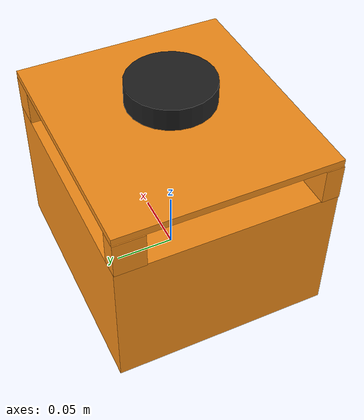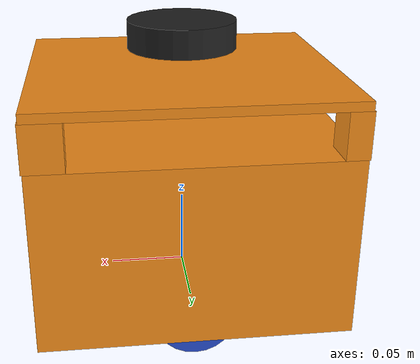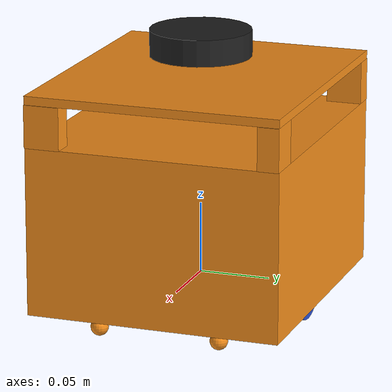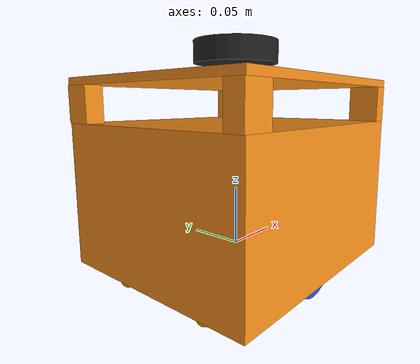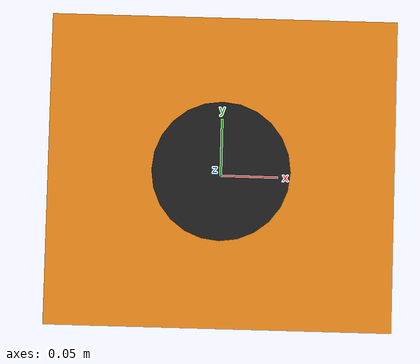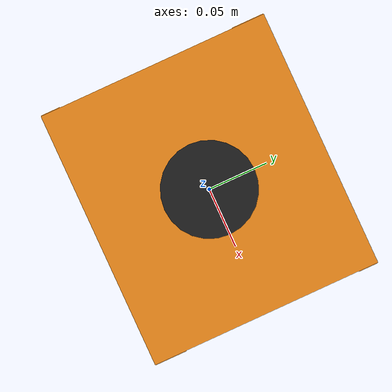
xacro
<?xml version="1.0"?>
<robot xmlns:xacro="http://www.ros.org/wiki/xacro"  name="robot">

    <xacro:arg name="use_ros2_control" default="true"/>

    <xacro:include filename="robot_core.xacro" />

    <xacro:if value="$(arg use_ros2_control)">
        <xacro:include filename="ros2_control.xacro" />
    </xacro:if>

    <xacro:unless value="$(arg use_ros2_control)">
        <xacro:include filename="gazebo_control.xacro" />
    </xacro:unless>

    <xacro:include filename="lidar.xacro" />

</robot>

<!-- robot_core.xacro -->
<robot xmlns:xacro="http://www.ros.org/wiki/xacro">

    <xacro:include filename="materials.xacro" />
    <xacro:include filename="inertial_macros.xacro" />

    <!-- BASE  -->

    <link name="base_link">

    </link>

    <!-- BODY -->

    <link name="body_link">
        <visual>
            <origin xyz="0 0 0.04875"/>
            <geometry>
                <box size="0.2 0.1795 0.1185"/>
            </geometry>
            <material name="orange"/>
        </visual>

        <collision>
            <origin xyz="0 0 0.04875"/>
            <geometry>
                <box size="0.2 0.1795 0.1185"/>
            </geometry>
        </collision>

        <xacro:inertial_box mass="2" x="0.2" y="0.1795" z="0.1185">
            <origin xyz="0 0 0.04875"/>
        </xacro:inertial_box>
    </link>

    <joint name="body_joint" type="fixed">
        <parent link="base_link"/>
        <child link="body_link"/>
        <origin xyz="0 0 0"/>
    </joint>

    <gazebo reference="body_link">
        <material>Gazebo/Orange</material>
    </gazebo>

    <!-- COLUMNS -->

    <link name="columns_link">

        <!-- FRONT RIGHT -->

        <visual>
            <origin xyz="0.093306 -0.07725 0"/>
            <geometry>
                <box size="0.015 0.025 0.030"/>
            </geometry>
            <material name="orange"/>
        </visual>

        <!-- FRONT LEFT -->

        <visual>
            <origin xyz="0.088306 0.08225 0"/>
            <geometry>
                <box size="0.025 0.015 0.030"/>
            </geometry>
            <material name="orange"/>
        </visual>

        <!-- REAR RIGHT -->

        <visual>
            <origin xyz="-0.088306 -0.08225 0"/>
            <geometry>
                <box size="0.025 0.015 0.030"/>
            </geometry>
            <material name="orange"/>
        </visual>

        <!-- REAR LEFT -->

        <visual>
            <origin xyz="-0.093306 0.07725 0"/>
            <geometry>
                <box size="0.015 0.025 0.030"/>
            </geometry>
            <material name="orange"/>
        </visual>

        <collision>
            <origin xyz="0 0 0.0"/>
            <geometry>
                <box size="0.2 0.1795 0.030"/>
            </geometry>
        </collision>

        <xacro:inertial_box mass="0.001" x="0.2" y="0.1795" z="0.030">
            <origin xyz="0 0 0.0"/>
        </xacro:inertial_box>

    </link>

    <joint name="columns_joint" type="fixed">
        <parent link="body_link"/>
        <child link="columns_link"/>
        <origin xyz="0 0 0.123"/>
    </joint>

    <gazebo reference="columns_link">
        <material>Gazebo/Orange</material>
    </gazebo>

    <!-- PLATFORM -->

    <link name="platform_link">
        <visual>
            <origin xyz="0 0 0"/>
            <geometry>
                <box size="0.2 0.1795 0.006"/>
            </geometry>
            <material name="orange"/>
        </visual>

        <collision>
            <origin xyz="0 0 0"/>
            <geometry>
                <box size="0.2 0.1795 0.006"/>
            </geometry>
        </collision>

        <xacro:inertial_box mass="0.001" x="0.2" y="0.1795" z="0.006">
            <origin xyz="0 0 00"/>
        </xacro:inertial_box>
    </link>

    <joint name="platform_joint" type="fixed">
        <parent link="body_link"/>
        <child link="platform_link"/>
        <origin xyz="0 0 0.141"/>
    </joint>

    <gazebo reference="platform_link">
        <material>Gazebo/Orange</material>
    </gazebo>

    <!-- WHEELS -->

    <!-- LEFT WHEEL -->

    <link name="wheel_left_link">
        <visual>
            <geometry>
                <cylinder radius="0.026" length="0.015"/>
            </geometry>
            <material name="blue"/>
        </visual>

        <collision>
            <geometry>
                <cylinder radius="0.026" length="0.015"/>
            </geometry>
        </collision>

        <xacro:inertial_cylinder mass="0.1" length="0.015" radius="0.026">
            <origin xyz="0 0 0" rpy="0 0 0"/>
        </xacro:inertial_cylinder>
    </link>

    <joint name="wheel_left_joint" type="continuous">
        <parent link="base_link"/>
        <child link="wheel_left_link"/>
        <origin xyz="0 0.07225 0" rpy="-${pi/2} 0 0"/>
        <axis xyz="0 0 1"/>
    </joint>

    <gazebo reference="wheel_left_link">
        <material>Gazebo/Blue</material>
    </gazebo>

    <!-- RIGHT WHEEL -->

    <link name="wheel_right_link">
        <visual>
            <geometry>
                <cylinder radius="0.026" length="0.015"/>
            </geometry>
            <material name="blue"/>
        </visual>

        <collision>
            <geometry>
                <cylinder radius="0.026" length="0.015"/>
            </geometry>
        </collision>

        <xacro:inertial_cylinder mass="0.1" length="0.015" radius="0.026">
            <origin xyz="0 0 0" rpy="0 0 0"/>
        </xacro:inertial_cylinder>
    </link>

    <joint name="wheel_right_joint" type="continuous">
        <parent link="base_link"/>
        <child link="wheel_right_link"/>
        <origin xyz="0 -0.07225 0" rpy="${pi/2} 0 0"/>
        <axis xyz="0 0 -1"/>
    </joint>

     <gazebo reference="wheel_right_link">
        <material>Gazebo/Blue</material>
    </gazebo>

    <!-- CASTER WHEELS-->

    <!-- RIGHT FRONT CASTER-->

    <link name="caster_rf_link">
        <visual>
            <geometry>
                <sphere radius="0.00625"/>
            </geometry>
        </visual>

        <collision>
            <geometry>
                <sphere radius="0.00625"/>
            </geometry>
        </collision>

        <xacro:inertial_sphere mass="0.01" radius="0.00625">
            <origin xyz="0 0 0"/>
        </xacro:inertial_sphere>
    </link>

    <joint name="caster_rf_joint" type="fixed">
        <parent link="body_link"/>
        <child link="caster_rf_link"/>
        <origin xyz="0.08435 -0.0431 -0.01825"/>
    </joint>

    <gazebo reference="caster_rf_link">
        <material>Gazebo/Orange</material>
        <mu1 value="0.001"/>
        <mu2 value="0.001"/>
    </gazebo>

    <!-- LEFT FRONT CASTER-->

    <link name="caster_lf_link">
        <visual>
            <geometry>
                <sphere radius="0.00625"/>
            </geometry>
            <material name="orange"/>
        </visual>

        <collision>
            <geometry>
                <sphere radius="0.00625"/>
            </geometry>
        </collision>

        <xacro:inertial_sphere mass="0.01" radius="0.00625">
            <origin xyz="0 0 0"/>
        </xacro:inertial_sphere>
    </link>

    <joint name="caster_lf_joint" type="fixed">
        <parent link="body_link"/>
        <child link="caster_lf_link"/>
        <origin xyz="0.08435 0.0431 -0.01825"/>
    </joint>

    <gazebo reference="caster_lf_link">
        <material>Gazebo/Orange</material>
        <mu1 value="0.001"/>
        <mu2 value="0.001"/>
    </gazebo>

    <!-- RIGHT REAR CASTER-->

    <link name="caster_rr_link">
        <visual>
            <geometry>
                <sphere radius="0.00625"/>
            </geometry>
            <material name="orange"/>
        </visual>

        <collision>
            <geometry>
                <sphere radius="0.00625"/>
            </geometry>
        </collision>

        <xacro:inertial_sphere mass="0.01" radius="0.00625">
            <origin xyz="0 0 0"/>
        </xacro:inertial_sphere>
    </link>

    <joint name="caster_rr_joint" type="fixed">
        <parent link="body_link"/>
        <child link="caster_rr_link"/>
        <origin xyz="-0.08435 -0.0431 -0.01825"/>
    </joint>

    <gazebo reference="caster_rr_link">
        <material>Gazebo/Orange</material>
        <mu1 value="0.001"/>
        <mu2 value="0.001"/>
    </gazebo>

    <!-- LEFT REAR CASTER-->

    <link name="caster_lr_link">
        <visual>
            <geometry>
                <sphere radius="0.00625"/>
            </geometry>
            <material name="orange"/>
        </visual>

        <collision>
            <geometry>
                <sphere radius="0.00625"/>
            </geometry>
        </collision>

        <xacro:inertial_sphere mass="0.01" radius="0.00625">
            <origin xyz="0 0 0"/>
        </xacro:inertial_sphere>
    </link>

    <joint name="caster_lr_joint" type="fixed">
        <parent link="body_link"/>
        <child link="caster_lr_link"/>
        <origin xyz="-0.08435 0.0431 -0.01825"/>
    </joint>

    <gazebo reference="caster_lr_link">
        <material>Gazebo/Orange</material>
        <mu1 value="0.001"/>
        <mu21 value="0.001"/>
    </gazebo>

</robot>

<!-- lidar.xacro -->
<robot xmlns:xacro="http://www.ros.org/wiki/xacro" >

    <joint name="laser_joint" type="fixed">
        <parent link="base_link"/>
        <child link="laser_frame"/>
        <origin xyz="0 0 0.16575" rpy="0 0 0"/>

    </joint>

    <link name="laser_frame">
        <visual>
            <geometry>
                <cylinder radius="0.0355" length="0.0185"/>
            </geometry>
            <material name="black"/>
        </visual>
        <collision>
            <geometry>
                <cylinder radius="0.0355" length="0.0185"/>
            </geometry>
        </collision>
        <xacro:inertial_cylinder mass="0.1" length="0.0185" radius="0.0355">
            <origin xyz="0 0 0" rpy="0 0 0"/>
        </xacro:inertial_cylinder>
    </link>

    <gazebo reference="laser_frame">
        <material>Gazebo/Red</material>

        <sensor name="laser" type="ray">
            <pose> 0 0 0 0 0 0 </pose>
            <visualize>true</visualize>
            <update_rate>10</update_rate>
            <ray>
                <scan>
                    <horizontal>
                        <samples>360</samples>
                        <min_angle>-3.14</min_angle>
                        <max_angle>3.14</max_angle>
                    </horizontal>
                </scan>
                <range>
                    <min>0.3</min>
                    <max>12</max>
                </range>
            </ray>
            <plugin name="laser_controller" filename="libgazebo_ros_ray_sensor.so">
                <ros>
                    <argument>~/out:=scan</argument>
                </ros>
                <output_type>sensor_msgs/LaserScan</output_type>
                <frame_name>laser_frame</frame_name>
            </plugin>
        </sensor>
    </gazebo>

</robot>
